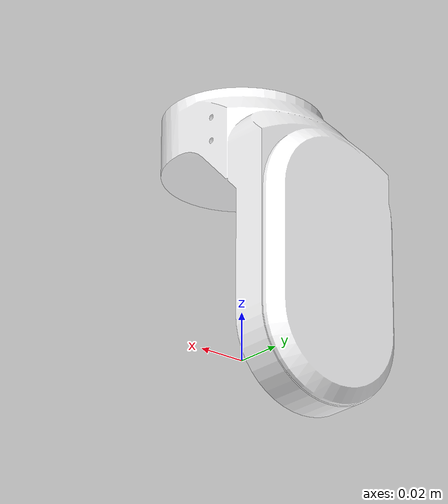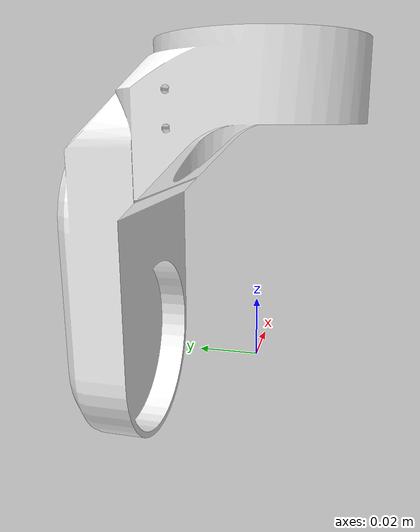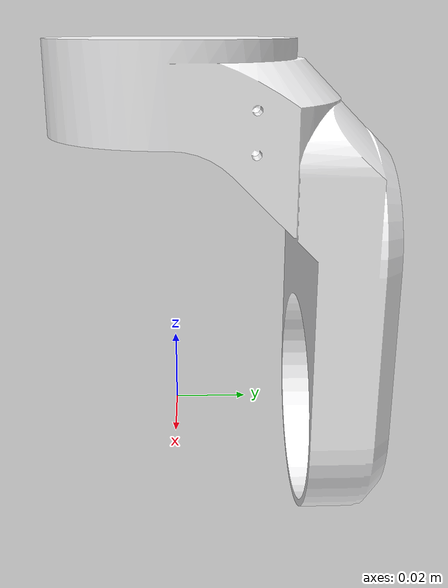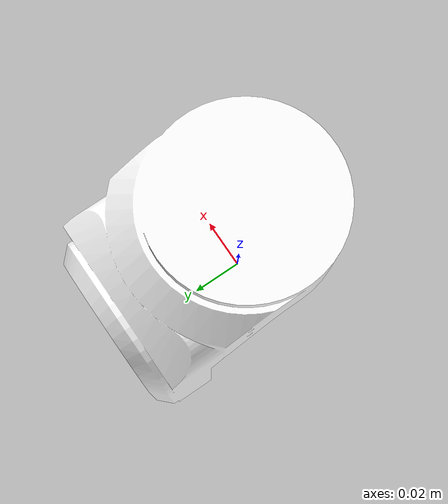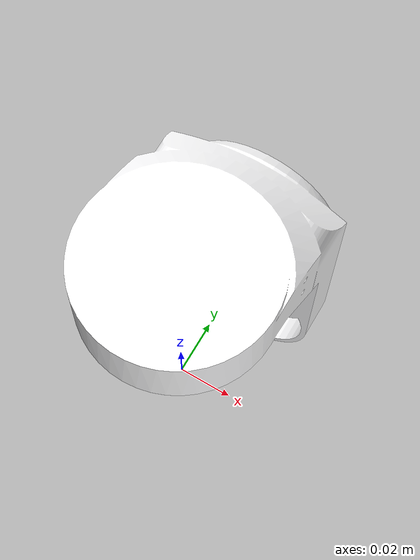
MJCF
<mujoco model="LINK_18">
  <default>
    <default class="visual">
      <geom group="2" type="mesh" contype="0" conaffinity="0"/>
    </default>
    <default class="collision">
      <geom group="3" type="mesh"/>
    </default>
  </default>
  <asset>
    <material name="254,254,255" specular="0.9973853333333333" shininess="1.0" rgba="0.996078 0.996078 1.000000 1.000000"/>
    <mesh file="LINK_18.obj"/>
    <mesh file="LINK_18_collision_0.obj"/>
    <mesh file="LINK_18_collision_1.obj"/>
    <mesh file="LINK_18_collision_2.obj"/>
    <mesh file="LINK_18_collision_3.obj"/>
    <mesh file="LINK_18_collision_4.obj"/>
    <mesh file="LINK_18_collision_5.obj"/>
    <mesh file="LINK_18_collision_6.obj"/>
    <mesh file="LINK_18_collision_7.obj"/>
    <mesh file="LINK_18_collision_8.obj"/>
    <mesh file="LINK_18_collision_9.obj"/>
    <mesh file="LINK_18_collision_10.obj"/>
    <mesh file="LINK_18_collision_11.obj"/>
    <mesh file="LINK_18_collision_12.obj"/>
    <mesh file="LINK_18_collision_13.obj"/>
    <mesh file="LINK_18_collision_14.obj"/>
    <mesh file="LINK_18_collision_15.obj"/>
    <mesh file="LINK_18_collision_16.obj"/>
    <mesh file="LINK_18_collision_17.obj"/>
    <mesh file="LINK_18_collision_18.obj"/>
    <mesh file="LINK_18_collision_19.obj"/>
    <mesh file="LINK_18_collision_20.obj"/>
  </asset>
  <worldbody>
    <body name="LINK_18">
      <geom material="254,254,255" mesh="LINK_18" class="visual"/>
      <geom mesh="LINK_18_collision_0" rgba="0.9478846402069938 0.1987008729730071 0.8449403984745043 1" class="collision"/>
      <geom mesh="LINK_18_collision_1" rgba="0.22538596338542727 0.7535142683008274 0.9889570697013296 1" class="collision"/>
      <geom mesh="LINK_18_collision_2" rgba="0.7370936182130775 0.8156500649516548 0.028178220614564986 1" class="collision"/>
      <geom mesh="LINK_18_collision_3" rgba="0.4747634242099782 0.1257289757686637 0.1884189032464365 1" class="collision"/>
      <geom mesh="LINK_18_collision_4" rgba="0.31845599074177366 0.9374151863482145 0.3333054024509746 1" class="collision"/>
      <geom mesh="LINK_18_collision_5" rgba="0.6406927288444517 0.3446844112646976 0.9324713456312661 1" class="collision"/>
      <geom mesh="LINK_18_collision_6" rgba="0.8001201247353111 0.9336739463507634 0.7354075499203127 1" class="collision"/>
      <geom mesh="LINK_18_collision_7" rgba="0.6235277241545195 0.8167361343094909 0.028146968801310956 1" class="collision"/>
      <geom mesh="LINK_18_collision_8" rgba="0.21142980310946957 0.9879635833995071 0.9088556133389608 1" class="collision"/>
      <geom mesh="LINK_18_collision_9" rgba="0.2953575127428456 0.31992685882651173 0.9861243981302803 1" class="collision"/>
      <geom mesh="LINK_18_collision_10" rgba="0.2831300322060111 0.4871077205860197 0.3310928818977623 1" class="collision"/>
      <geom mesh="LINK_18_collision_11" rgba="0.5077677096371798 0.17623823843309827 0.9128929461594841 1" class="collision"/>
      <geom mesh="LINK_18_collision_12" rgba="0.2826136023929412 0.5347009948910152 0.7566196543367554 1" class="collision"/>
      <geom mesh="LINK_18_collision_13" rgba="0.24666901280625453 0.5927698751284047 0.29516626728448325 1" class="collision"/>
      <geom mesh="LINK_18_collision_14" rgba="0.8500658408633401 0.7540515419537802 0.4992184675634683 1" class="collision"/>
      <geom mesh="LINK_18_collision_15" rgba="0.567760111666111 0.999760417520901 0.9392133399451104 1" class="collision"/>
      <geom mesh="LINK_18_collision_16" rgba="0.1382507148851857 0.5130222717132179 0.023946346957827602 1" class="collision"/>
      <geom mesh="LINK_18_collision_17" rgba="0.27847361462421305 0.1647606120258276 0.5833006999378364 1" class="collision"/>
      <geom mesh="LINK_18_collision_18" rgba="0.7301450817853431 0.9562628552168602 0.7613214250354039 1" class="collision"/>
      <geom mesh="LINK_18_collision_19" rgba="0.9362467953235633 0.883858132862171 0.5971398653306964 1" class="collision"/>
      <geom mesh="LINK_18_collision_20" rgba="0.860822909175029 0.7724258658603471 0.959004956167223 1" class="collision"/>
    </body>
  </worldbody>
</mujoco>
